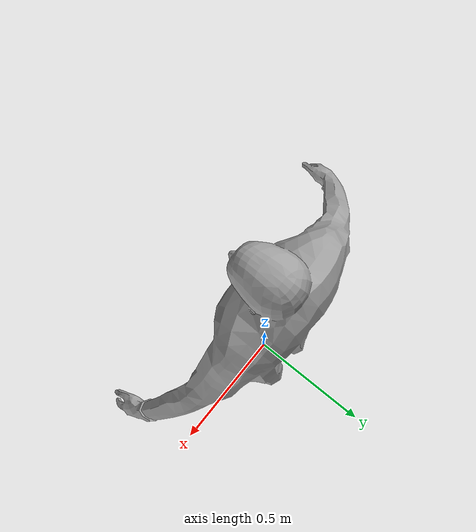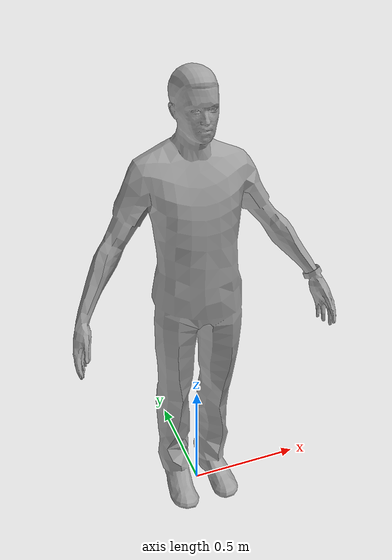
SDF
<?xml version="1.0" ?>
<sdf version="1.6">
  <model name="czlowiek">
    <static>true</static>
    <link name="link">
      <collision name="collision">
        <geometry>
          <mesh>
            <uri>model://czlowiek/meshes/czlowiek.dae</uri>
          </mesh>
        </geometry>
      </collision>
      <visual name="visual">
        <geometry>
          <mesh>
            <uri>model://czlowiek/meshes/czlowiek.dae</uri>
          </mesh>
        </geometry>
      </visual>
    </link>
  </model>
</sdf>
